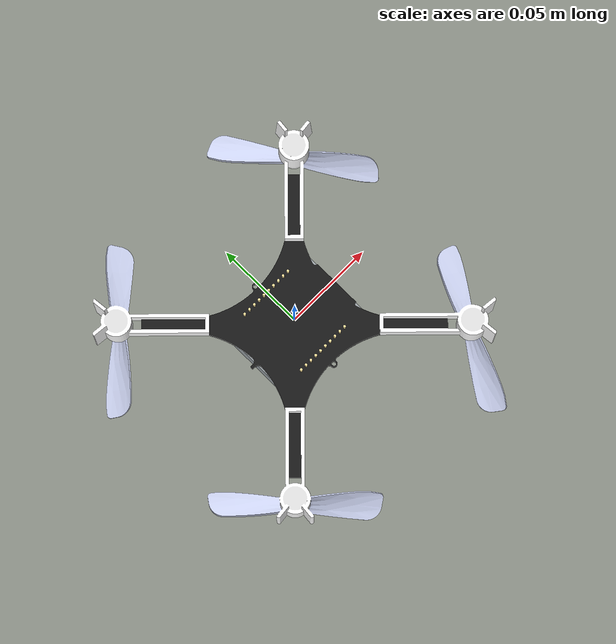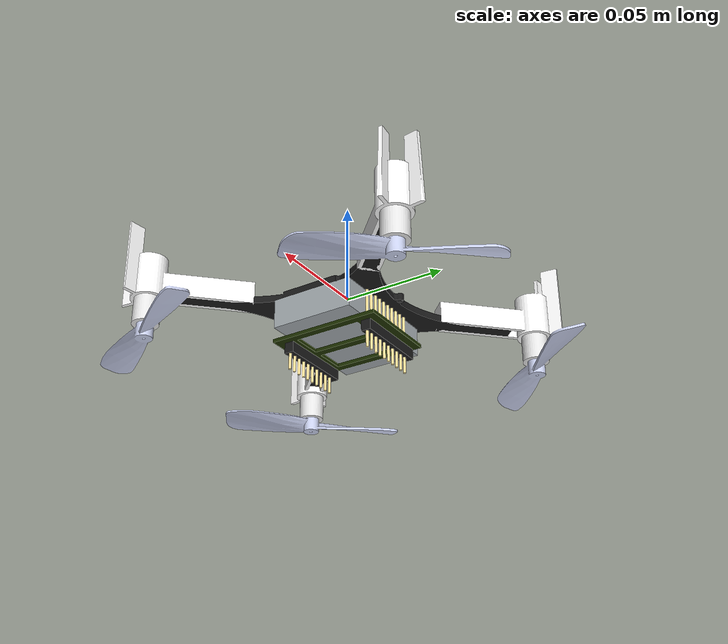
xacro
<?xml version="1.0"?>
<robot xmlns:xacro="http://www.ros.org/wiki/xacro" name="crazyflie">
  <xacro:arg name="robot_id" default="0"/>

  <link name="base_link">
    <visual>
      <origin xyz="0 0 0" rpy="4.71 0 0" />
      <geometry>
        <mesh filename="package://mavswarm2/cf_description/crazyflie2.dae"/>
      </geometry>
    </visual>
  </link>

</robot>
